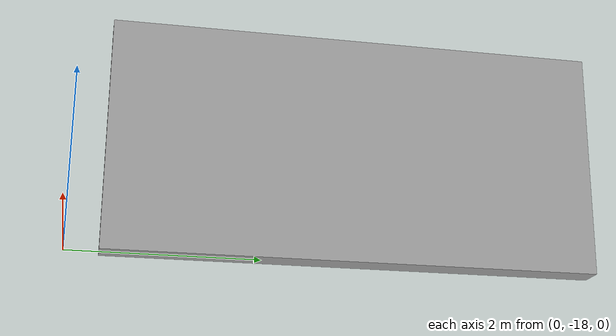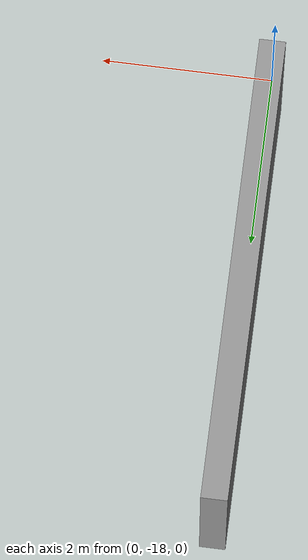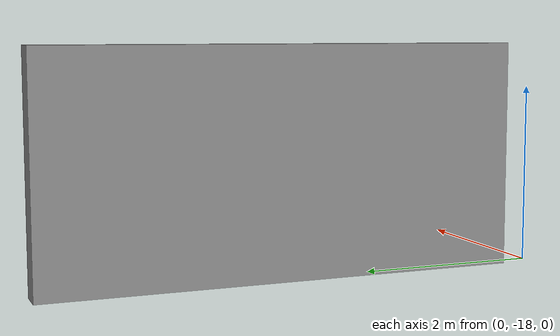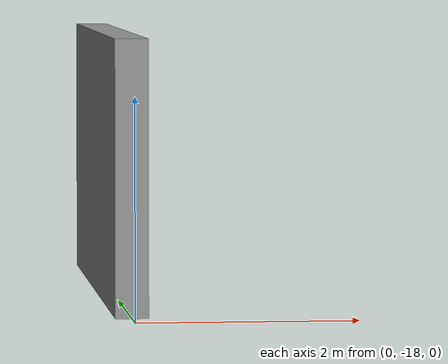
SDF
<?xml version='1.0'?>
<sdf version='1.6'>
  <model name='wall_5_03'>
    <pose frame=''>0 -15 0 0 -0 0</pose>
    <link name='Wall_8'>
      <collision name='Wall_8_Collision'>
        <geometry>
          <box>
            <size>5.3 0.3 2.5</size>
          </box>
        </geometry>
        <pose frame=''>0 0 1.25 0 -0 0</pose>
      </collision>
      <visual name='Wall_8_Visual'>
        <pose frame=''>0 0 1.25 0 -0 0</pose>
        <geometry>
          <box>
            <size>5.3 0.3 2.5</size>
          </box>
        </geometry>
        <material>
          <script>
            <uri>file://media/materials/scripts/gazebo.material</uri>
            <name>Gazebo/Grey</name>
          </script>
          <ambient>1 1 1 1</ambient>
        </material>
        <meta>
          <layer>0</layer>
        </meta>
      </visual>
      <pose frame=''>0 -0 0 0 -0 1.5708</pose>
    </link>
    <static>1</static>
  </model>
</sdf>
